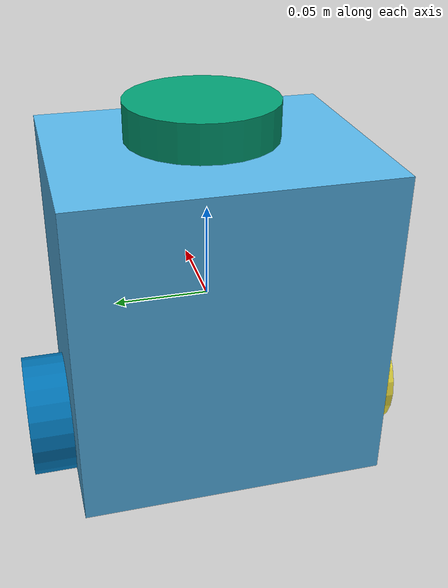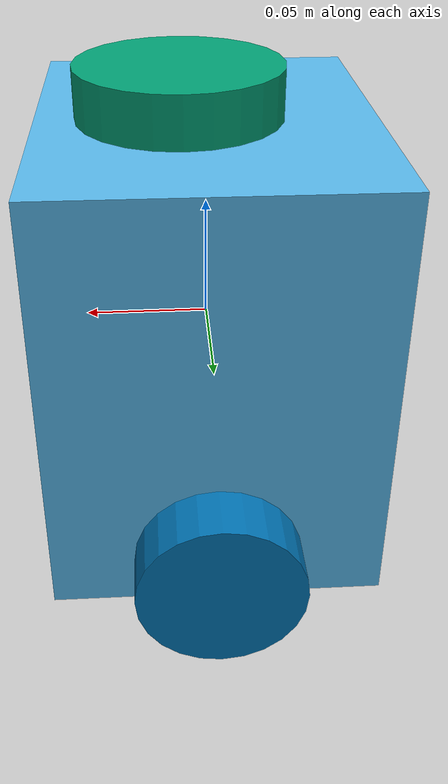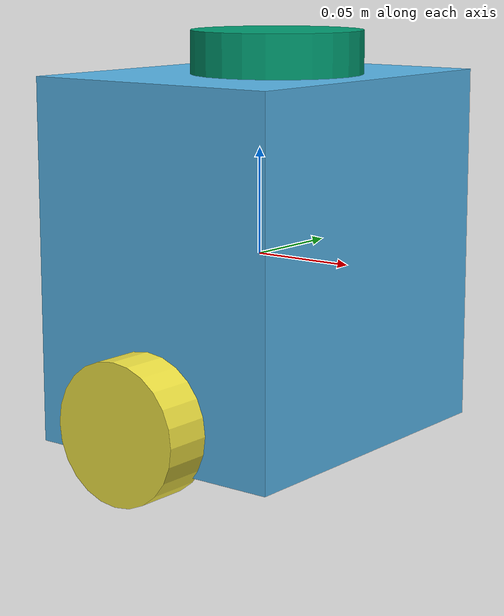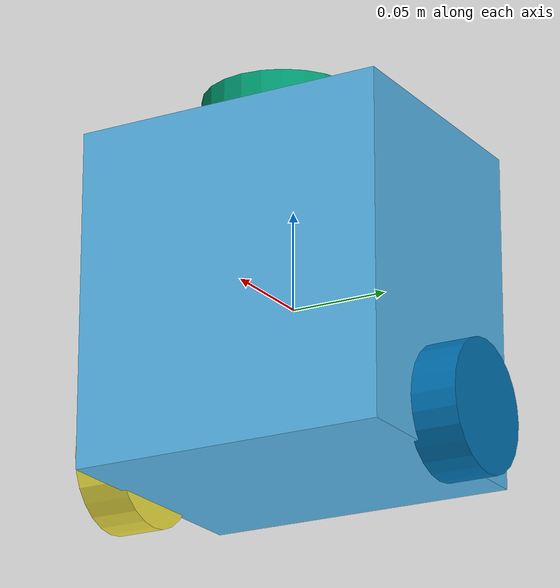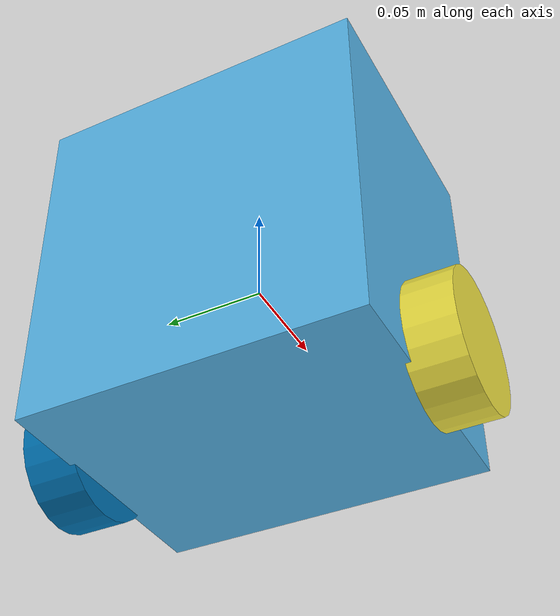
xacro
<?xml version="1.0" ?>
<robot name="filburbot" xmlns:xacro="http://www.ros.org/wiki/xacro">
  <!-- Constants for robot dimensions -->
  <xacro:property name="wheel_radius" value="0.0325"/>
  <xacro:property name="wheel_separation" value="0.155"/>
  <xacro:property name="wheel_thickness" value="0.025"/>

  <link name="base_link"></link>

  <joint name="base_link_joint" type="fixed">
    <origin xyz="0 0 0" rpy="0 0 0" />
    <parent link="base_link"/>
    <child link="chassis" />
  </joint>

  <link name="chassis">
    <visual>
      <geometry>
        <box size="${wheel_separation - wheel_thickness} 0.16 0.17"/>
      </geometry>
    </visual>
  </link>

  <link name="neato_laser">
    <visual>
      <geometry>
        <cylinder length="0.02" radius="0.04"/>
      </geometry>
    </visual>
  </link>

  <joint name="neato_laser_joint" type="fixed">
    <origin xyz="0.01 0 ${(0.17 + 0.02)/2}" rpy="0 0 0" />
    <parent link="chassis"/>
    <child link="neato_laser" />
  </joint>

  <link name="left_wheel">
    <visual>
      <geometry>
        <cylinder length="${wheel_thickness}" radius="${wheel_radius}"/>
      </geometry>
    </visual>
  </link>

  <joint name="left_wheel_joint" type="continuous">
    <origin xyz="0 -${(wheel_separation + wheel_thickness)/2} ${-0.17/2 + 0.02}" rpy="1.5708 0 0" />
    <axis xyz="0 0 -1"/>
    <parent link="chassis"/>
    <child link="left_wheel" />
  </joint>

  <link name="right_wheel">
    <visual>
      <geometry>
        <cylinder length="${wheel_thickness}" radius="${wheel_radius}"/>
      </geometry>
    </visual>
  </link>

  <joint name="right_wheel_joint" type="continuous">
    <origin xyz="0 ${(wheel_separation + wheel_thickness)/2} ${-0.17/2 + 0.02}" rpy="1.5708 0 0" />
    <axis xyz="0 0 -1"/>
    <parent link="chassis"/>
    <child link="right_wheel" />
  </joint>
</robot>
